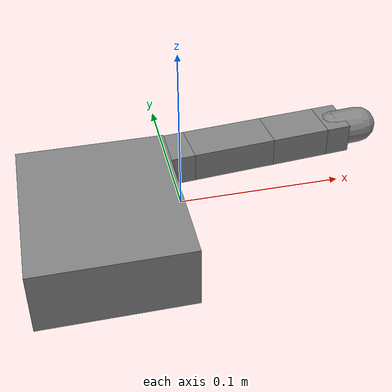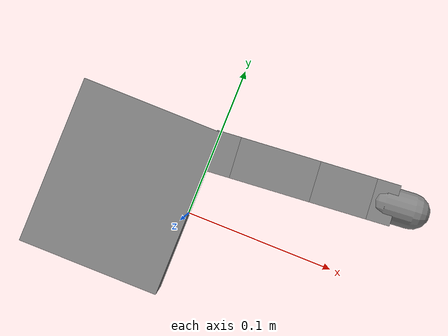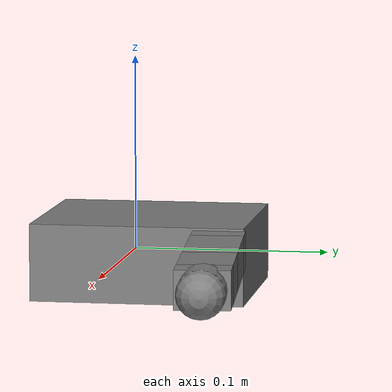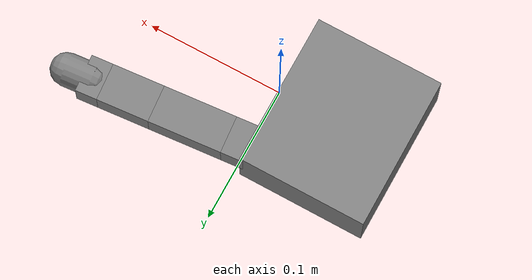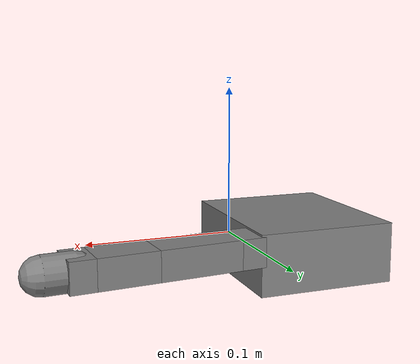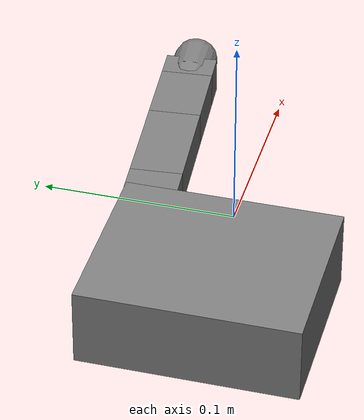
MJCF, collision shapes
<mujoco model="allegro_left">
  <compiler angle="radian" meshdir="assets" autolimits="true"/>

  <option cone="elliptic" impratio="10"/>

  <default>
    <default class="allegro_left">
      <joint axis="0 1 0" damping=".1"/>
      <position kp="1"/>
      <geom density="800"/>

      <default class="visual">
        <geom type="mesh" contype="0" conaffinity="0" group="2" material="black"/>
        <default class="palm_visual">
          <geom mesh="base_link"/>
        </default>
        <default class="base_visual">
          <geom mesh="link_0.0"/>
        </default>
        <default class="proximal_visual">
          <geom mesh="link_1.0"/>
        </default>
        <default class="medial_visual">
          <geom mesh="link_2.0"/>
        </default>
        <default class="distal_visual">
          <geom mesh="link_3.0"/>
        </default>
        <default class="fingertip_visual">
          <geom pos="0 0 0.0267" material="white" mesh="link_3.0_tip"/>
        </default>
        <default class="thumbtip_visual">
          <geom pos="0 0 0.0423" material="white" mesh="link_15.0_tip"/>
        </default>
      </default>

      <default class="collision">
        <geom group="3" type="box" mass="0"/>
        <default class="palm_collision">
          <geom size="0.0204 0.0565 0.0475" pos="-0.0093 0 -0.0475"/>
        </default>
        <default class="base_collision">
          <geom size="0.0098 0.01375 0.0082" pos="0 0 0.0082"/>
          <default class="thumb_base_collision">
            <geom size="0.0179 0.017 0.02275" pos="-0.0179 0.009 0.0145"/>
          </default>
        </default>
        <default class="proximal_collision">
          <geom size="0.0098 0.01375 0.027" pos="0 0 0.027"/>
          <default class="thumb_proximal_collision">
            <geom size="0.0098 0.01375 0.00885" pos="0 0 0.00885"/>
          </default>
        </default>
        <default class="medial_collision">
          <geom size="0.0098 0.01375 0.0192" pos="0 0 0.0192"/>
          <default class="thumb_medial_collision">
            <geom size="0.0098 0.01375 0.0257" pos="0 0 0.0257"/>
          </default>
        </default>
        <default class="distal_collision">
          <geom size="0.0098 0.01375 0.008" pos="0 0 0.008"/>
          <default class="thumb_distal_collision">
            <geom size="0.0098 0.01375 0.0157" pos="0 0 0.0157"/>
          </default>
        </default>
        <default class="fingertip_collision">
          <geom type="capsule" size="0.012 0.01" pos="0 0 0.019"/>
          <default class="thumbtip_collision">
            <geom type="capsule" size="0.012 0.008" pos="0 0 0.035"/>
          </default>
        </default>
      </default>

      <default class="base">
        <joint axis="0 0 1" range="-0.47 0.47"/>
        <position ctrlrange="-0.47 0.47"/>
      </default>
      <default class="proximal">
        <joint range="-0.196 1.61"/>
        <position ctrlrange="-0.196 1.61"/>
      </default>
      <default class="medial">
        <joint range="-0.174 1.709"/>
        <position ctrlrange="-0.174 1.709"/>
      </default>
      <default class="distal">
        <joint range="-0.227 1.618"/>
        <position ctrlrange="-0.227 1.618"/>
      </default>
    </default>
  </default>

  <asset>
    <material name="black" rgba="0.2 0.2 0.2 1"/>
    <material name="white" rgba="0.9 0.9 0.9 1"/>

    <mesh file="base_link_left.stl"/>
    <mesh file="link_0.0.stl"/>
    <mesh file="link_1.0.stl"/>
    <mesh file="link_2.0.stl"/>
    <mesh file="link_3.0.stl"/>
    <mesh file="link_3.0_tip.stl"/>
    <mesh file="link_12.0_left.stl"/>
    <mesh file="link_13.0.stl"/>
    <mesh file="link_14.0.stl"/>
    <mesh file="link_15.0.stl"/>
    <mesh file="link_15.0_tip.stl"/>
  </asset>

  <worldbody>
    <body name="palm" quat="0 1 0 1" childclass="allegro_left" mocap="true">
      <geom quat="1 -1 0 0" class="palm_visual" mesh="base_link_left"/>
      <geom class="palm_collision"/>
      <!-- First finger -->
      <body name="ff_base" pos="0 -0.0435 -0.001542" quat="0.999048 0.0436194 0 0">
        <joint name="ffj0" class="base"/>
        <geom class="base_visual"/>
        <geom class="base_collision"/>
        <body name="ff_proximal" pos="0 0 0.0164">
          <joint name="ffj1" class="proximal"/>
          <geom class="proximal_visual"/>
          <geom class="proximal_collision"/>
          <body name="ff_medial" pos="0 0 0.054">
            <joint name="ffj2" class="medial"/>
            <geom class="medial_visual"/>
            <geom class="medial_collision"/>
            <body name="ff_distal" pos="0 0 0.0384">
              <joint name="ffj3" class="distal"/>
              <geom class="distal_visual"/>
              <geom class="distal_collision"/>
              <body name="ff_tip">
                <geom class="fingertip_visual"/>
                <geom class="fingertip_collision"/>
                <site name="ff_grasp" pos="0.012 0 0.0237" size="0.001" rgba="1 0 0 1" group="4"/>
              </body>
            </body>
          </body>
        </body>
      </body>
    </body>
  </worldbody>

  <contact>
    <exclude body1="palm" body2="ff_base"/>
  </contact>

  <actuator>
    <position name="ffa0" joint="ffj0" class="base"/>
    <position name="ffa1" joint="ffj1" class="proximal"/>
    <position name="ffa2" joint="ffj2" class="medial"/>
    <position name="ffa3" joint="ffj3" class="distal"/>
  </actuator>
</mujoco>
